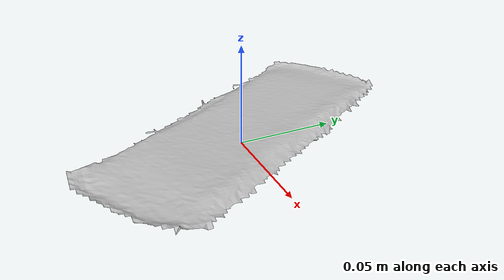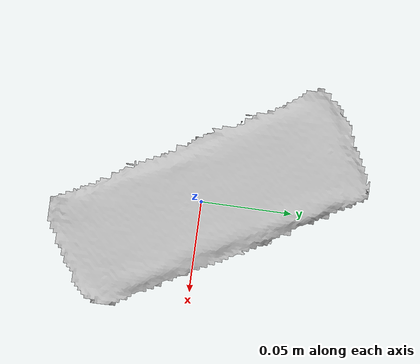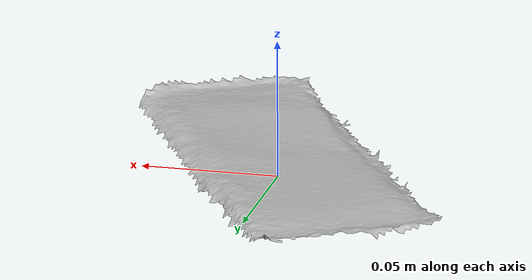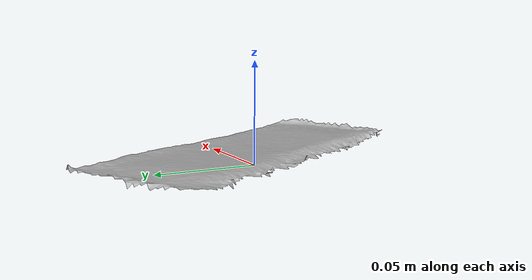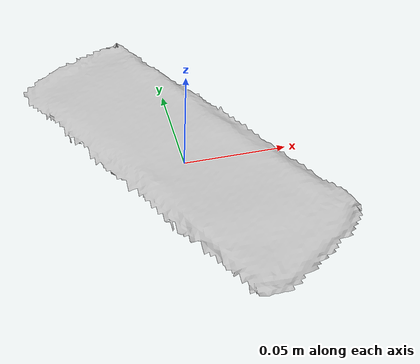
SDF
<?xml version='1.0'?>
<sdf version="1.4">
  <model name="clif_z_bar_chocolate_chip">
    <static>false</static>
    <link name="link">
      <inertial>
        <pose>0.0024461189181117717 0.0008263469544550956 0.0698405796335497 1.5737490724834278 -0.032735400525438635 2.9001762574108683</pose>
        <mass>0.10548368926478464</mass>
        <inertia>
          <ixx>0.0004017927551658126</ixx>
          <ixy>4.306190306042925e-21</ixy>
          <ixz>2.738113345162455e-20</ixz>
          <iyy>0.00026966902067541163</iyy>
          <iyz>2.254058962628981e-21</iyz>
          <izz>0.00017026239132719042</izz>
        </inertia>
      </inertial>
      <collision name="collision">
        <geometry>
          <mesh>
            <!-- Use a downsampled mesh for collisions -->
            <uri>model:///clif_z_bar_chocolate_chip/clif_z_bar_chocolate_chip_250_collision.obj</uri>
	        </mesh>
        </geometry>
        <surface>
      </surface>
      </collision>
      <visual name="visual">
        <geometry>
          <mesh>
            <uri>model:///clif_z_bar_chocolate_chip/optimized_tsdf_texture_mapped_mesh.obj</uri>
	        </mesh>
        </geometry>
        <material>
          <script>
            <uri>model:///clif_z_bar_chocolate_chip/clif_z_bar_chocolate_chip.material</uri>
            <name>clif_z_bar_chocolate_chip</name>
          </script>
        </material>
      </visual>
    </link>
  </model>
</sdf>
